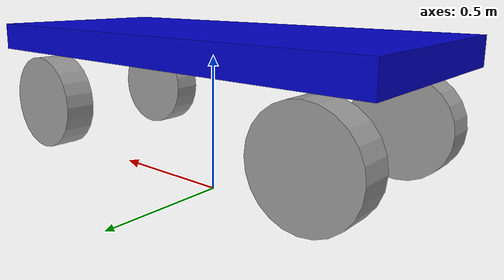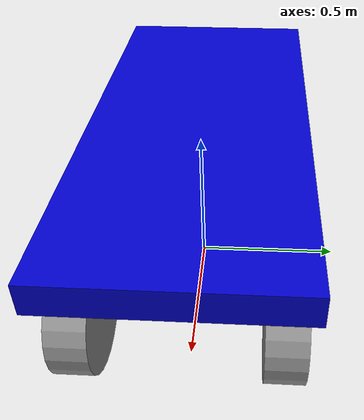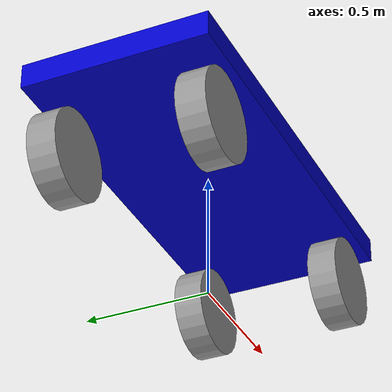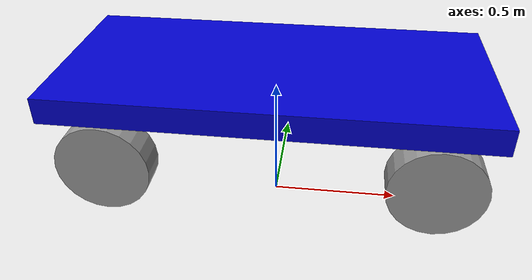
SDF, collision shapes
<?xml version="1.0" ?>
<sdf version="1.5">

<!-- zero y inside the model is the wheel axle height -->

  <model name="podcar">
    <pose>0 0 0.3 0 0 0</pose>

    <!-- Main Chassis -->
    <link name="base_link">

      <!-- Physics -->
      <collision name="collision">
        <pose>0 0 0.25 0 0 0</pose>
        <geometry>
          <box>
            <size>1.6 .73 .1</size>
          </box>
        </geometry>
      </collision>
	  <inertial>
        <mass>33.855</mass>
        <pose>-0.0856132 -0.000839955 0.238145 0 0 0</pose>
        <inertia>
          <ixx>2.2343</ixx>
          <ixy>-0.023642</ixy>
          <ixz>0.275174</ixz>
          <iyy>3.42518</iyy>
          <iyz>0.00239624</iyz>
          <izz>2.1241</izz>
        </inertia>
      </inertial>

		<!-- only thae flat chassis above the wheels matches the physics -->
      <visual name='chassis_visual'>
        <pose>0 0 0.25 0 0 0</pose>
        <geometry>
          <box>
            <size>1.6 .73 .1</size>
          </box>
        </geometry>
        <material>
          <ambient> 0 0 0.8 0
          </ambient>
          <emissive> 0.0 0 0 0
          </emissive>
        </material>
      </visual>

	<!-- just to look pretty -->
	 <visual name='front_canopy_visual'>
        <pose>0.25 0 0.8 0 0 0</pose>
        <geometry>
          <box>
            <size>.7 .7  1.0 </size>
          </box>
        </geometry>
        <material>
          <ambient> 0 0 0.8 0
          </ambient>
          <emissive> 0.0 0 0 0
          </emissive>
        </material>
      </visual>
      <visual name='rear_canopy_visual'>
        <pose>-0.2 0 1.0 0 0 0</pose>
        <geometry>
          <box>
            <size>.7 .7  1.5 </size>
          </box>
        </geometry>
        <material>
          <ambient> 0 0 0.8 0
          </ambient>
          <emissive> 0.0 0 0 0
          </emissive>
        </material>
      </visual>
	</link>

    <link name="back_left_wheel">
      <pose>-0.6  0.285475 0.0    0 0 0</pose>
      <inertial>
        <mass>2.6357</mass>
        <pose>0 0 0 0 0 0</pose>
        <inertia>
          <ixx>0.0246688</ixx>
          <ixy>0</ixy>
          <ixz>0</ixz>
          <iyy>0.0246688</iyy>
          <iyz>0</iyz>
          <izz>0.0441058</izz>
        </inertia>
      </inertial>
      <collision name="back_left_wheel_collision">
        <pose>0 0 0 -1.5707 0 0</pose>
        <geometry>
          <cylinder>
            <radius>0.17775</radius>
            <length>0.1143</length>
          </cylinder>
        </geometry>
        <surface>
          <friction>
            <ode>
              <mu>100000.0</mu>
              <mu2>100000.0</mu2>
              <slip1>0.0</slip1>
              <slip2>0.0</slip2>
            </ode>
          </friction>
        </surface>
      </collision>
      <visual name="back_left_wheel">
        <pose>0 0 0 -3.14159 0 0</pose>
        <geometry>
          <mesh>
            <uri>model://husky/meshes/wheel.stl</uri>
          </mesh>
        </geometry>
        <material>
          <script>
            <name>Gazebo/Grey</name>
          </script>
        </material>
      </visual>
    </link>
    <joint name="back_left_joint" type="revolute">
      <parent>base_link</parent>
      <child>back_left_wheel</child>
      <axis>
        <xyz>0 1 0</xyz>
        <use_parent_model_frame>true</use_parent_model_frame>
      </axis>
      <physics>
        <ode>
          <limit>
            <cfm>0.000000</cfm>
            <erp>0.900000</erp>
          </limit>
        </ode>
      </physics>
    </joint>

    <link name="back_right_wheel">
      <pose>-0.6 -0.285475 0.0  0 0 0</pose>
      <inertial>
        <mass>2.6357</mass>
        <pose>0 0 0 0 0 0</pose>
        <inertia>
          <ixx>0.0246688</ixx>
          <ixy>0</ixy>
          <ixz>0</ixz>
          <iyy>0.0246688</iyy>
          <iyz>0</iyz>
          <izz>0.0441058</izz>
        </inertia>
      </inertial>
      <collision name="back_right_wheel_collision">
        <pose>0 0 0 -1.5707 0 0</pose>
        <geometry>
          <cylinder>
            <radius>0.17775</radius>
            <length>0.1143</length>
          </cylinder>
        </geometry>
        <surface>
          <friction>
            <ode>
              <mu>100000.0</mu>
              <mu2>100000.0</mu2>
              <slip1>0.0</slip1>
              <slip2>0.0</slip2>
            </ode>
          </friction>
        </surface>
      </collision>
      <visual name="back_right_wheel">
        <pose>0 0 0 -3.14159 0 0</pose>
        <geometry>
          <mesh>
            <uri>model://husky/meshes/wheel.stl</uri>
          </mesh>
        </geometry>
        <material>
          <script>
            <name>Gazebo/Grey</name>
          </script>
        </material>
      </visual>
    </link>
    <joint name="back_right_joint" type="revolute">
      <parent>base_link</parent>
      <child>back_right_wheel</child>
      <axis>
        <xyz>0 1 0</xyz>
        <use_parent_model_frame>true</use_parent_model_frame>
      </axis>
      <physics>
        <ode>
          <limit>
            <cfm>0.000000</cfm>
            <erp>0.900000</erp>
          </limit>
        </ode>
      </physics>
    </joint>

  <!--testing-->
    <link name="front_left_pivot">
      <pose>0.6 0.285475 0.0 0 0 0</pose>
      <inertial>
        <mass>2.6357</mass>
        <pose>0 0 0 0 0 0</pose>
        <inertia>
          <ixx>0.0246688</ixx>
          <ixy>0</ixy>
          <ixz>0</ixz>
          <iyy>0.0246688</iyy>
          <iyz>0</iyz>
          <izz>0.0441058</izz>
        </inertia>
      </inertial>
    </link>
    <joint name="front_left_pivot_joint" type="revolute">
      <parent>base_link</parent>
      <child>front_left_pivot</child>
      <axis>
        <xyz>0 0 1</xyz>
        <use_parent_model_frame>true</use_parent_model_frame>
      </axis>
      <physics>
        <ode>
          <limit>
            <cfm>0.000000</cfm>
            <erp>0.900000</erp>
          </limit>
        </ode>
      </physics>
    </joint>

    <link name="front_left_wheel">
      <pose>0.6 0.285475 0.0 0 0 0</pose>
      <inertial>
        <mass>2.6357</mass>
        <pose>0 0 0 0 0 0</pose>
        <inertia>
          <ixx>0.0246688</ixx>
          <ixy>0</ixy>
          <ixz>0</ixz>
          <iyy>0.0246688</iyy>
          <iyz>0</iyz>
          <izz>0.0441058</izz>
        </inertia>
      </inertial>
      <collision name="front_left_wheel_collision">
        <pose>0 0 0 -1.5707 0 0</pose>
        <geometry>
          <cylinder>
            <radius>0.17775</radius>
            <length>0.1143</length>
          </cylinder>
        </geometry>
        <surface>
          <friction>
            <ode>
              <mu>100000.0</mu>
              <mu2>100000.0</mu2>
              <slip1>0.0</slip1>
              <slip2>0.0</slip2>
            </ode>
          </friction>
        </surface>
      </collision>
      <visual name="front_left_wheel">
        <pose>0 0 0 -3.14159 0 0</pose>
        <geometry>
          <mesh>
            <uri>model://husky/meshes/wheel.stl</uri>
          </mesh>
        </geometry>
        <material>
          <script>
            <name>Gazebo/Grey</name>
          </script>
        </material>
      </visual>
    </link>
    <joint name="front_left_joint" type="revolute">
      <parent>front_left_pivot</parent>
      <child>front_left_wheel</child>
      <axis>
        <xyz>0 1 0</xyz>
        <use_parent_model_frame>false</use_parent_model_frame>
      </axis>
      <physics>
        <ode>
          <limit>
            <cfm>0.000000</cfm>
            <erp>0.900000</erp>
          </limit>
        </ode>
      </physics>
    </joint>

  <!--testing-->
    <link name="front_right_pivot">
      <pose>0.6 -0.285475 0.0 0 0 0</pose>
      <inertial>
        <mass>2.6357</mass>
        <pose>0 0 0 0 0 0</pose>
        <inertia>
          <ixx>0.0246688</ixx>
          <ixy>0</ixy>
          <ixz>0</ixz>
          <iyy>0.0246688</iyy>
          <iyz>0</iyz>
          <izz>0.0441058</izz>
        </inertia>
      </inertial>
    </link>
    <joint name="front_right_pivot_joint" type="revolute">
      <parent>base_link</parent>
      <child>front_right_pivot</child>
      <axis>
        <xyz>0 0 1</xyz>
        <use_parent_model_frame>true</use_parent_model_frame>
      </axis>
      <physics>
        <ode>
          <limit>
            <cfm>0.000000</cfm>
            <erp>0.900000</erp>
          </limit>
        </ode>
      </physics>
    </joint>

    <link name="front_right_wheel">
      <pose>0.6 -0.285475 0.0 0 0 0</pose>
      <inertial>
        <mass>2.6357</mass>
        <pose>0 0 0 0 0 0</pose>
        <inertia>
          <ixx>0.0246688</ixx>
          <ixy>0</ixy>
          <ixz>0</ixz>
          <iyy>0.0246688</iyy>
          <iyz>0</iyz>
          <izz>0.0441058</izz>
        </inertia>
      </inertial>
      <collision name="front_right_wheel_collision">
        <pose>0 0 0 -1.5707 0 0</pose>
        <geometry>
          <cylinder>
            <radius>0.17775</radius>
            <length>0.1143</length>
          </cylinder>
        </geometry>
        <surface>
          <friction>
            <ode>
              <mu>100000.0</mu>
              <mu2>100000.0</mu2>
              <slip1>0.0</slip1>
              <slip2>0.0</slip2>
            </ode>
          </friction>
        </surface>
      </collision>
      <visual name="front_right_wheel">
        <pose>0 0 0 -3.14159 0 0</pose>
        <geometry>
          <mesh>
            <uri>model://husky/meshes/wheel.stl</uri>
          </mesh>
        </geometry>
        <material>
          <script>
            <name>Gazebo/Grey</name>
          </script>
        </material>
      </visual>
    </link>
    <joint name="front_right_joint" type="revolute">
      <parent>front_right_pivot</parent>
      <child>front_right_wheel</child>
      <axis>
        <xyz>0 1 0</xyz>
        <use_parent_model_frame>false</use_parent_model_frame>
      </axis>
      <physics>
        <ode>
          <limit>
            <cfm>0.000000</cfm>
            <erp>0.900000</erp>
          </limit>
        </ode>
      </physics>
    </joint>

-->

  </model>
</sdf>
